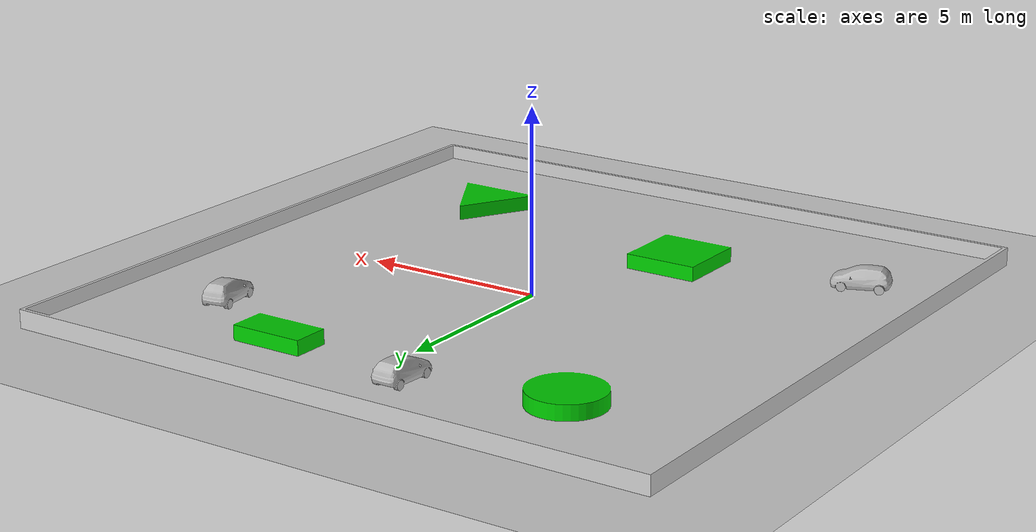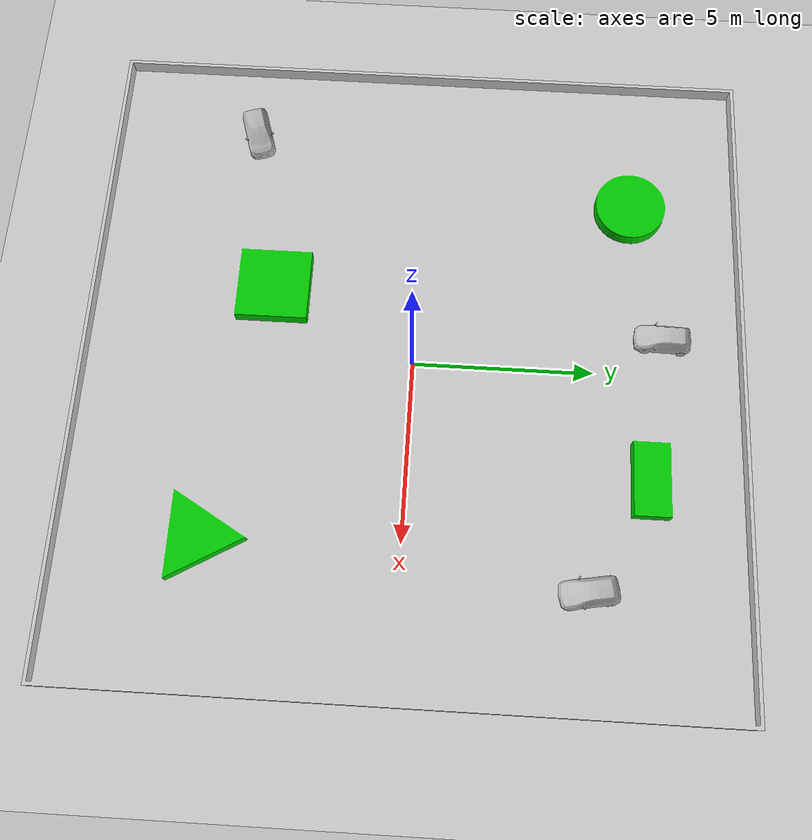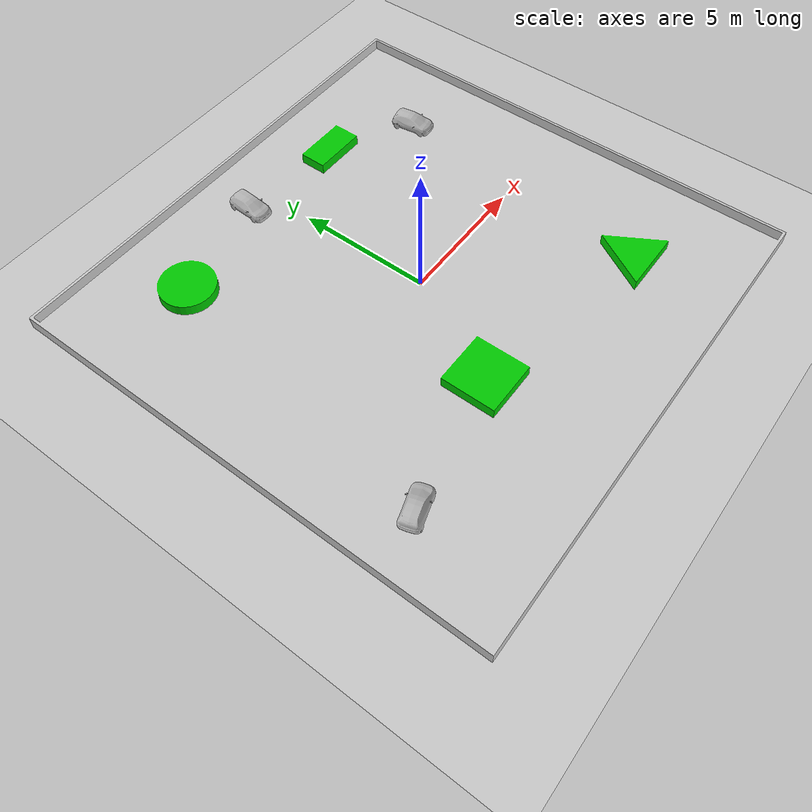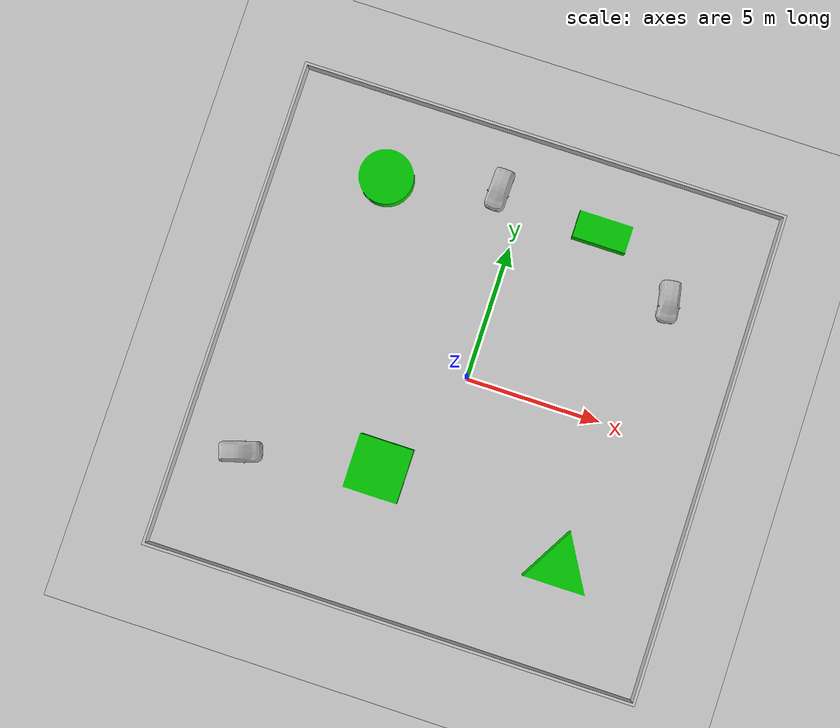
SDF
<sdf version="1.4">
 <world name="default">
  <light name="sun" type="directional">
   <pose>0 0 10 0 -0 0</pose>
   <diffuse>0.8 0.8 0.8 1</diffuse>
   <specular>0.2 0.2 0.2 1</specular>
   <attenuation>
    <range>1000</range>
    <constant>0.9</constant>
    <linear>0.01</linear>
    <quadratic>0.001</quadratic>
   </attenuation>
   <direction>-0.5 0.1 -0.9</direction>
  </light>
  <include><uri>model://ground_plane</uri></include>
  <include><name>yolo_nav_stage</name><uri>model://yolo_nav_stage</uri><static>true</static></include>
  <include>
   <name>hatchback</name>
   <uri>model://hatchback</uri>
   <static>true</static>
   <pose>6 5 0.1 0 0 -1.4</pose>
  </include>
  <include>
   <name>hatchback2</name>
   <uri>model://hatchback</uri>
   <static>true</static>
   <pose>-1 7 0.1 0 0 -1.6</pose>
  </include>
  <include>
   <name>hatchback_blue</name>
   <uri>model://hatchback_blue</uri>
   <static>true</static>
   <pose>-7 -5 0.1 0 0 0.3</pose>
  </include>
 </world>
</sdf>

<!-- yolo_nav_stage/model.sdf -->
<sdf version="1.6">
  <model name="yolo_nav_stage">
    <static>true</static>
    <link name="link">
      <collision name="collision">
        <geometry>
          <mesh>
            <scale>1 1 1</scale>
            <uri>model://yolo_nav_stage/meshes/yolo_nav_stage.stl</uri>
          </mesh>
        </geometry>
        <surface>
          <friction>
            <ode>
              <mu>1.2</mu>
              <mu2>1.2</mu2>
            </ode>
          </friction>
        </surface>
      </collision>
      <visual name="visual">
        <geometry>
          <mesh>
            <scale>1 1 1</scale>
            <uri>model://yolo_nav_stage/meshes/yolo_nav_stage.dae</uri>
          </mesh>
        </geometry>
      </visual>
    </link>
  </model>
</sdf>

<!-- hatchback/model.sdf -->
<sdf version="1.6">
  <model name="hatchback">
    <static>true</static>
    <link name="link">
      <collision name="collision">
        <pose>0 0 0 0 0 1.57079632679</pose>
        <geometry>
          <mesh>
            <scale>0.01 0.01 0.01</scale>
            <uri>model://hatchback/meshes/hatchback.obj</uri>
          </mesh>
        </geometry>
      </collision>
      <visual name="visual">
        <pose>0 0 0 0 0 1.57079632679</pose>
        <geometry>
          <mesh>
            <scale>0.01 0.01 0.01</scale>
            <uri>model://hatchback/meshes/hatchback.obj</uri>
          </mesh>
        </geometry>
      </visual>
    </link>
  </model>
</sdf>

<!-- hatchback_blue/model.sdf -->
<sdf version="1.6">
  <model name="hatchback_blue">
    <static>true</static>
    <link name="link">
      <collision name="collision">
        <pose>0 0 0 0 0 1.57079632679</pose>
        <geometry>
          <mesh>
            <scale>0.01 0.01 0.01</scale>
            <uri>model://hatchback_blue/meshes/hatchback.obj</uri>
          </mesh>
        </geometry>
      </collision>
      <visual name="visual">
        <pose>0 0 0 0 0 1.57079632679</pose>
        <geometry>
          <mesh>
            <scale>0.01 0.01 0.01</scale>
            <uri>model://hatchback_blue/meshes/hatchback.obj</uri>
          </mesh>
        </geometry>
      </visual>
    </link>
  </model>
</sdf>
